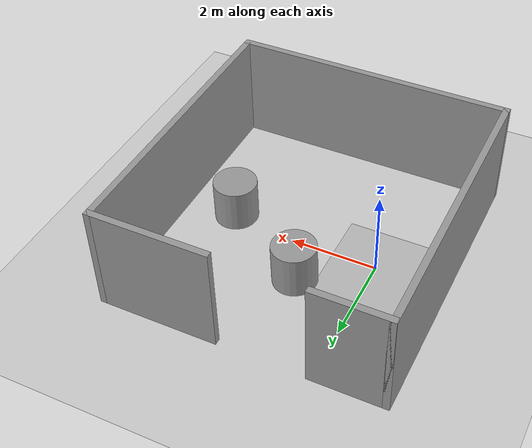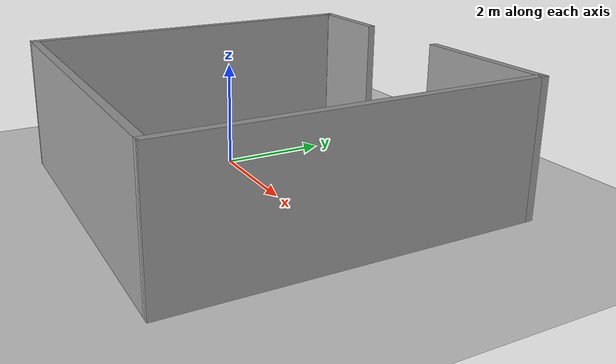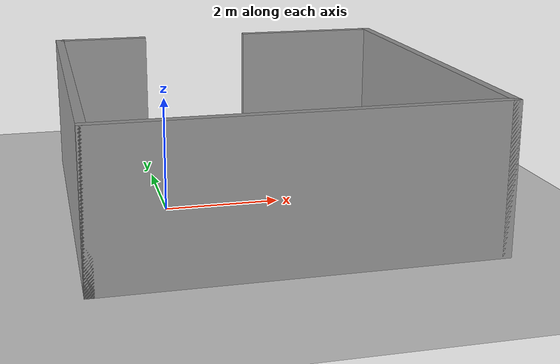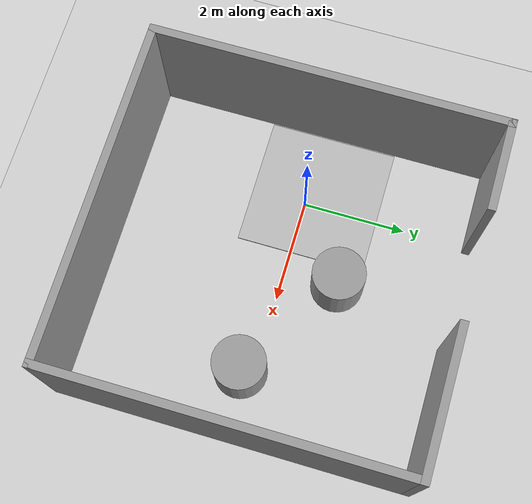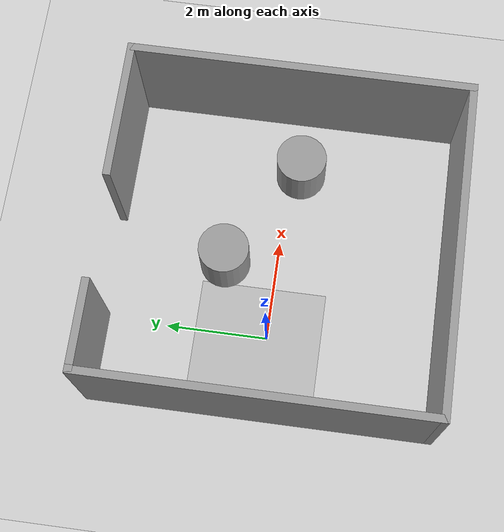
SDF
<sdf version="1.6">
 <world name="default">
  <light name="sun" type="directional">
   <pose>0 0 10 0 -0 0</pose>
   <diffuse>0.8 0.8 0.8 1</diffuse>
   <specular>0.2 0.2 0.2 1</specular>
   <attenuation>
    <range>1000</range>
    <constant>0.9</constant>
    <linear>0.01</linear>
    <quadratic>0.001</quadratic>
   </attenuation>
   <direction>-0.5 0.1 -0.9</direction>
  </light>
  <model name="ground_plane">
   <static>1</static>
   <link name="link">
    <collision name="collision">
     <geometry><plane><normal>0 0 1</normal><size>100 100</size></plane></geometry>
     <surface>
      <contact><collide_bitmask>65535</collide_bitmask></contact>
      <friction><ode><mu>100</mu><mu2>50</mu2></ode></friction>
     </surface>
    </collision>
    <visual name="visual">
     <cast_shadows>0</cast_shadows>
     <geometry><plane><normal>0 0 1</normal><size>100 100</size></plane></geometry>
     <material>
      <script><uri>file://media/materials/scripts/gazebo.material</uri><name>Gazebo/Grey</name></script>
     </material>
    </visual>
   </link>
  </model>
  <gravity>0 0 -9.8</gravity>
  <magnetic_field>6e-06 2.3e-05 -4.2e-05</magnetic_field>
  <atmosphere type="adiabatic"/>
  <physics name="default_physics" default="0" type="ode">
   <max_step_size>0.001</max_step_size>
   <real_time_factor>1</real_time_factor>
   <real_time_update_rate>1000</real_time_update_rate>
  </physics>
  <scene><ambient>0.4 0.4 0.4 1</ambient><background>0.7 0.7 0.7 1</background><shadows>1</shadows></scene>
  <audio><device>default</device></audio>
  <spherical_coordinates>
   <surface_model>EARTH_WGS84</surface_model>
   <latitude_deg>0</latitude_deg>
   <longitude_deg>0</longitude_deg>
   <elevation>0</elevation>
   <heading_deg>0</heading_deg>
  </spherical_coordinates>
  <model name="my_ground_plane">
   <static>1</static>
   <link name="link">
    <collision name="collision"><geometry><box><size>2.5 2.5 0.03</size></box></geometry></collision>
    <visual name="visual">
     <cast_shadows>0</cast_shadows>
     <geometry><box><size>2.5 2.5 0.03</size></box></geometry>
     <material>
      <script>
       <uri>model://my_ground_plane/materials/scripts</uri>
       <uri>model://my_ground_plane/materials/textures/</uri>
       <name>MyGroundPlane/Image</name>
      </script>
     </material>
    </visual>
   </link>
   <pose>-0.2313 0.186561 0 0 -0 0</pose>
  </model>
  <model name="modelo2">
   <pose>1.59503 -0.0489 0 0 -0 0</pose>
   <link name="Wall_0">
    <collision name="Wall_0_Collision">
     <geometry><box><size>6.5 0.15 2.5</size></box></geometry>
     <pose>0 0 1.25 0 -0 0</pose>
    </collision>
    <visual name="Wall_0_Visual">
     <pose>0 0 1.25 0 -0 0</pose>
     <geometry><box><size>6.5 0.15 2.5</size></box></geometry>
     <material>
      <script><uri>file://media/materials/scripts/gazebo.material</uri><name>Gazebo/Grey</name></script>
      <ambient>1 1 1 1</ambient>
     </material>
     <meta><layer>0</layer></meta>
    </visual>
    <pose>0 -3.3 0 0 -0 0</pose>
   </link>
   <link name="Wall_1">
    <collision name="Wall_1_Collision">
     <geometry><box><size>6.75 0.15 2.5</size></box></geometry>
     <pose>0 0 1.25 0 -0 0</pose>
    </collision>
    <visual name="Wall_1_Visual">
     <pose>0 0 1.25 0 -0 0</pose>
     <geometry><box><size>6.75 0.15 2.5</size></box></geometry>
     <material>
      <script><uri>file://media/materials/scripts/gazebo.material</uri><name>Gazebo/Grey</name></script>
      <ambient>1 1 1 1</ambient>
     </material>
     <meta><layer>0</layer></meta>
    </visual>
    <pose>3.175 -0 0 0 -0 1.5708</pose>
   </link>
   <link name="Wall_3">
    <collision name="Wall_3_Collision">
     <geometry><box><size>6.75 0.15 2.5</size></box></geometry>
     <pose>0 0 1.25 0 -0 0</pose>
    </collision>
    <visual name="Wall_3_Visual">
     <pose>0 0 1.25 0 -0 0</pose>
     <geometry><box><size>6.75 0.15 2.5</size></box></geometry>
     <material>
      <script><uri>file://media/materials/scripts/gazebo.material</uri><name>Gazebo/Grey</name></script>
      <ambient>1 1 1 1</ambient>
     </material>
     <meta><layer>0</layer></meta>
    </visual>
    <pose>-3.175 -0 0 0 -0 1.5708</pose>
   </link>
   <link name="Wall_4">
    <collision name="Wall_4_Collision">
     <geometry><box><size>0.16 0.15 2.5</size></box></geometry>
     <pose>0 0 1.25 0 -0 0</pose>
    </collision>
    <visual name="Wall_4_Visual">
     <pose>0 0 1.25 0 -0 0</pose>
     <geometry><box><size>0.16 0.15 2.5</size></box></geometry>
     <material>
      <script><uri>file://media/materials/scripts/gazebo.material</uri><name>Gazebo/Grey</name></script>
      <ambient>1 1 1 1</ambient>
     </material>
     <meta><layer>0</layer></meta>
    </visual>
    <pose>-3.17 3.3 0 0 -0 0</pose>
   </link>
   <link name="Wall_5">
    <collision name="Wall_5_Collision">
     <geometry><box><size>1.75 0.15 2.5</size></box></geometry>
     <pose>0 0 1.25 0 -0 0</pose>
    </collision>
    <visual name="Wall_5_Visual">
     <pose>0 0 1.25 0 -0 0</pose>
     <geometry><box><size>1.75 0.15 2.5</size></box></geometry>
     <material>
      <script><uri>file://media/materials/scripts/gazebo.material</uri><name>Gazebo/Grey</name></script>
      <ambient>1 1 1 1</ambient>
     </material>
     <meta><layer>0</layer></meta>
    </visual>
    <pose>-2.365 3.3 0 0 -0 0</pose>
   </link>
   <link name="Wall_7">
    <collision name="Wall_7_Collision">
     <geometry><box><size>2.75 0.15 2.5</size></box></geometry>
     <pose>0 0 1.25 0 -0 0</pose>
    </collision>
    <visual name="Wall_7_Visual">
     <pose>0 0 1.25 0 -0 0</pose>
     <geometry><box><size>2.75 0.15 2.5</size></box></geometry>
     <material>
      <script><uri>file://media/materials/scripts/gazebo.material</uri><name>Gazebo/Grey</name></script>
      <ambient>1 1 1 1</ambient>
     </material>
     <meta><layer>0</layer></meta>
    </visual>
    <pose>1.875 3.3 0 0 -0 3.14159</pose>
   </link>
   <static>1</static>
  </model>
  <model name="unit_cylinder">
   <link name="link">
    <inertial>
     <mass>1</mass>
     <inertia><ixx>0.145833</ixx><ixy>0</ixy><ixz>0</ixz><iyy>0.145833</iyy><iyz>0</iyz><izz>0.125</izz></inertia>
    </inertial>
    <visual name="visual">
     <geometry><cylinder><radius>0.5</radius><length>1</length></cylinder></geometry>
     <material>
      <script><name>Gazebo/Grey</name><uri>file://media/materials/scripts/gazebo.material</uri></script>
     </material>
    </visual>
    <collision name="collision">
     <geometry><cylinder><radius>0.5</radius><length>1</length></cylinder></geometry>
     <surface>
      <friction>
       <ode><mu>1</mu><mu2>1</mu2><fdir1>0 0 0</fdir1><slip1>0</slip1><slip2>0</slip2></ode>
       <torsional>
        <coefficient>1</coefficient>
        <patch_radius>0</patch_radius>
        <surface_radius>0</surface_radius>
        <use_patch_radius>1</use_patch_radius>
        <ode><slip>0</slip></ode>
       </torsional>
      </friction>
      <bounce><restitution_coefficient>0</restitution_coefficient><threshold>1e+06</threshold></bounce>
      <contact>
       <collide_without_contact>0</collide_without_contact>
       <collide_without_contact_bitmask>1</collide_without_contact_bitmask>
       <collide_bitmask>1</collide_bitmask>
       <ode>
        <soft_cfm>0</soft_cfm>
        <soft_erp>0.2</soft_erp>
        <kp>1e+13</kp>
        <kd>1</kd>
        <max_vel>0.01</max_vel>
        <min_depth>0</min_depth>
       </ode>
       <bullet>
        <split_impulse>1</split_impulse>
        <split_impulse_penetration_threshold>-0.01</split_impulse_penetration_threshold>
        <soft_cfm>0</soft_cfm>
        <soft_erp>0.2</soft_erp>
        <kp>1e+13</kp>
        <kd>1</kd>
       </bullet>
      </contact>
     </surface>
    </collision>
   </link>
   <static>1</static>
   <pose>3.53057 -0.237172 0.5 0 -0 0</pose>
  </model>
  <model name="unit_cylinder_0">
   <link name="link">
    <inertial>
     <mass>1</mass>
     <inertia><ixx>0.145833</ixx><ixy>0</ixy><ixz>0</ixz><iyy>0.145833</iyy><iyz>0</iyz><izz>0.125</izz></inertia>
    </inertial>
    <visual name="visual">
     <geometry><cylinder><radius>0.5</radius><length>1</length></cylinder></geometry>
     <material>
      <script><name>Gazebo/Grey</name><uri>file://media/materials/scripts/gazebo.material</uri></script>
     </material>
    </visual>
    <collision name="collision">
     <geometry><cylinder><radius>0.5</radius><length>1</length></cylinder></geometry>
     <surface>
      <friction>
       <ode><mu>1</mu><mu2>1</mu2><fdir1>0 0 0</fdir1><slip1>0</slip1><slip2>0</slip2></ode>
       <torsional>
        <coefficient>1</coefficient>
        <patch_radius>0</patch_radius>
        <surface_radius>0</surface_radius>
        <use_patch_radius>1</use_patch_radius>
        <ode><slip>0</slip></ode>
       </torsional>
      </friction>
      <bounce><restitution_coefficient>0</restitution_coefficient><threshold>1e+06</threshold></bounce>
      <contact>
       <collide_without_contact>0</collide_without_contact>
       <collide_without_contact_bitmask>1</collide_without_contact_bitmask>
       <collide_bitmask>1</collide_bitmask>
       <ode>
        <soft_cfm>0</soft_cfm>
        <soft_erp>0.2</soft_erp>
        <kp>1e+13</kp>
        <kd>1</kd>
        <max_vel>0.01</max_vel>
        <min_depth>0</min_depth>
       </ode>
       <bullet>
        <split_impulse>1</split_impulse>
        <split_impulse_penetration_threshold>-0.01</split_impulse_penetration_threshold>
        <soft_cfm>0</soft_cfm>
        <soft_erp>0.2</soft_erp>
        <kp>1e+13</kp>
        <kd>1</kd>
       </bullet>
      </contact>
     </surface>
    </collision>
   </link>
   <static>1</static>
   <pose>1.44767 1.03794 0.508079 1.7e-05 0.01631 -6.2e-05</pose>
  </model>
 </world>
</sdf>
